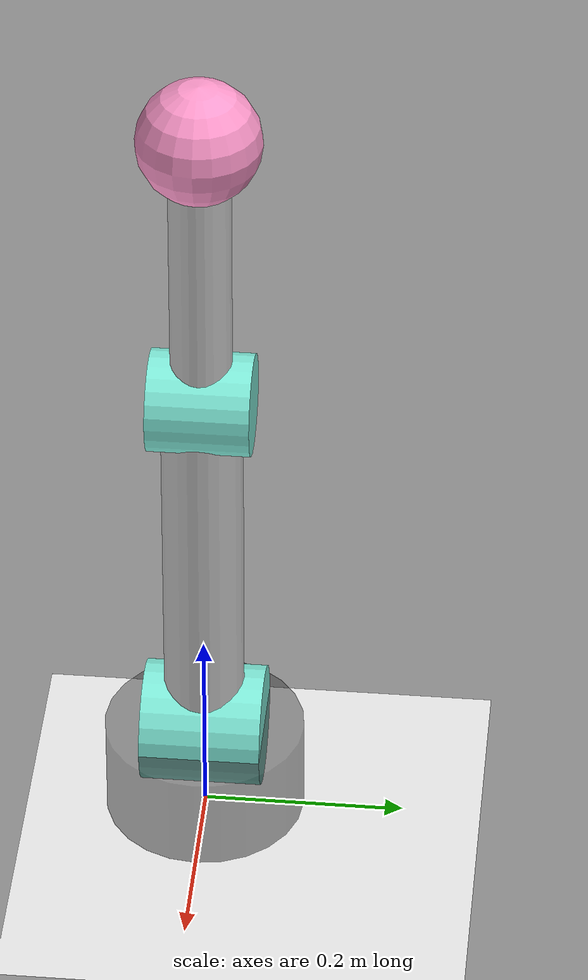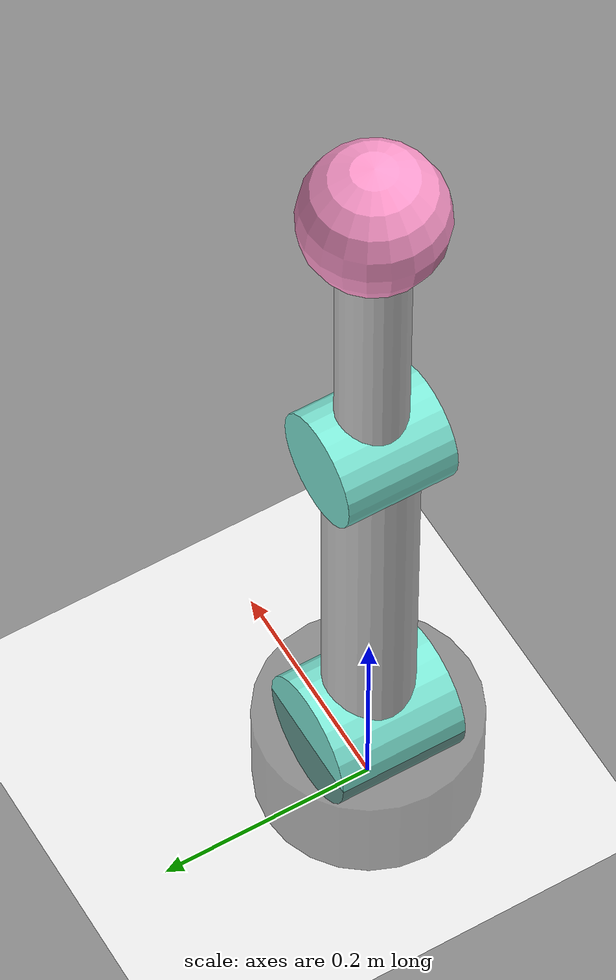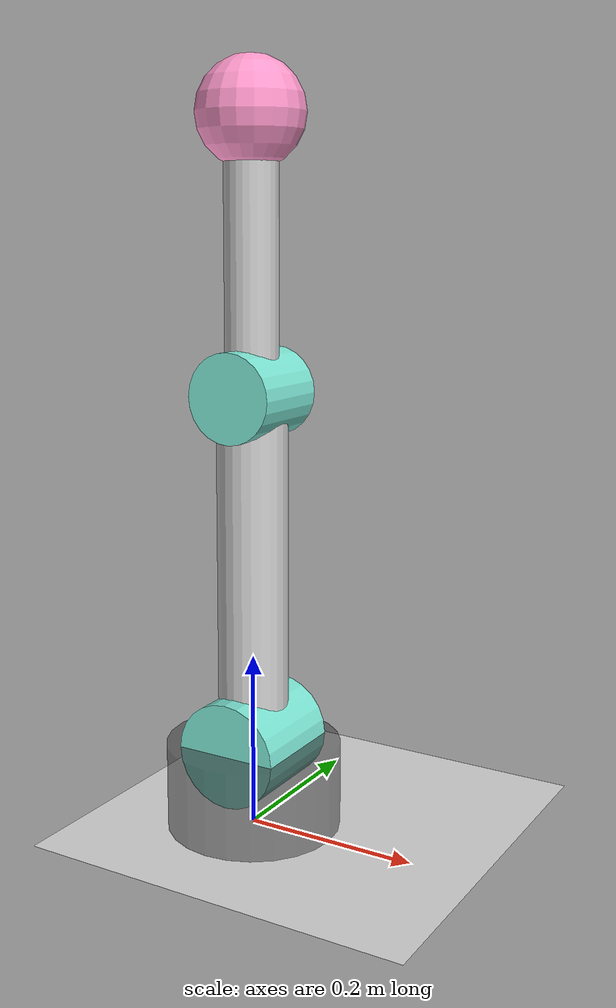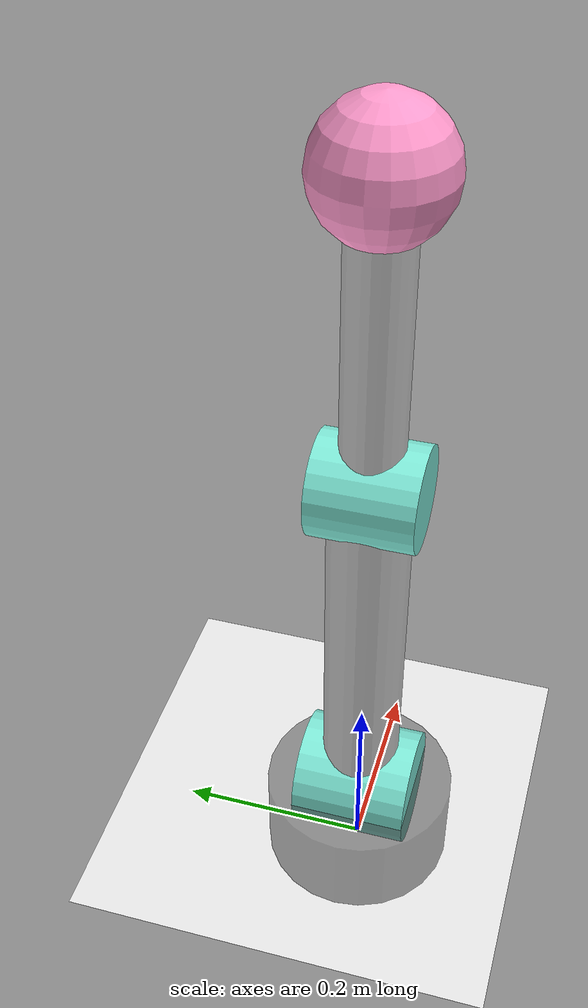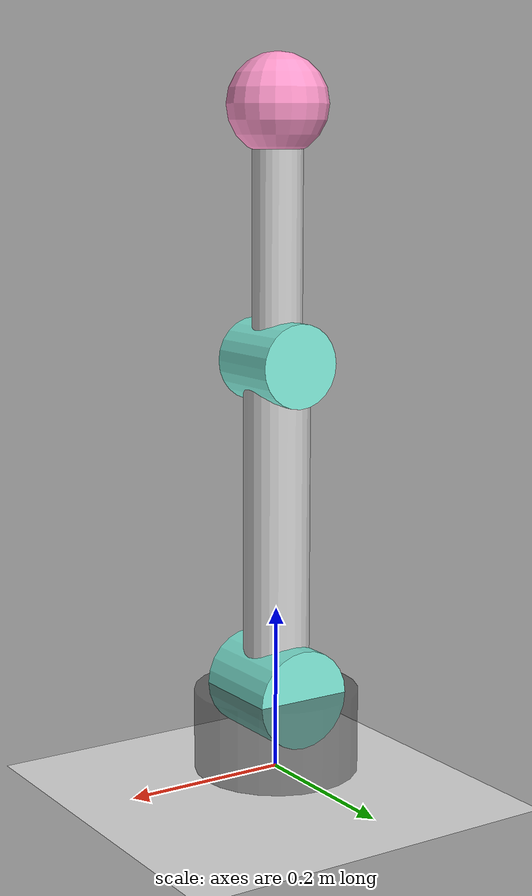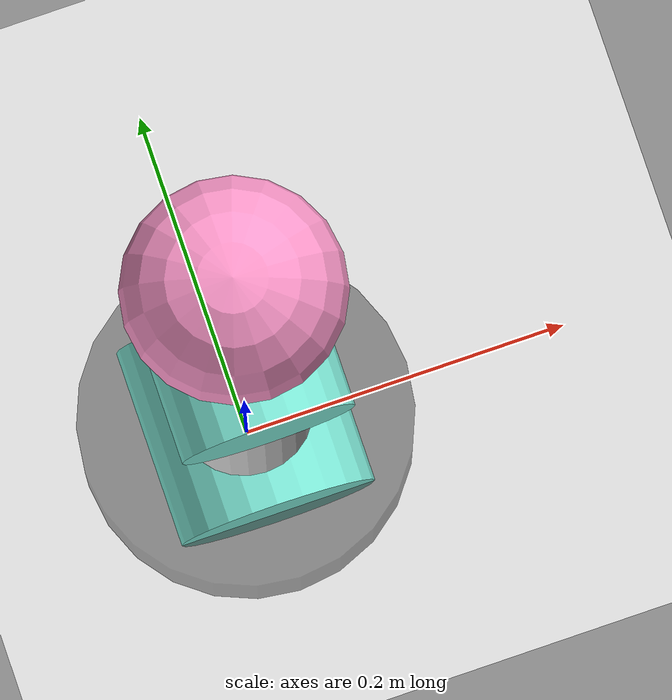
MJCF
<mujoco model="2dof_robot">
  <!-- 각도 단위를 degree로 사용하는 설정 -->
  <compiler angle="degree"/>
  <!-- 중력·시뮬레이션 시간 간격 설정 -->
  <option gravity="0 0 -9.81" timestep="0.005"/>

  <!-- 재질(material)·배경 정의 블록 -->
  <asset>
    <!-- 배경: light gray (skybox) -->
    <texture type="skybox" builtin="gradient"
             rgb1="0.75 0.75 0.75" rgb2="0.75 0.75 0.75"
             width="256" height="256"/>

    <material name="dark" rgba="0.2 0.2 0.2 0.5"/>
    <material name="gray" rgba="0.8 0.8 0.8 1"/>
    <material name="silver" rgba="0.9 0.9 0.9 1"/>
    <material name="mint" rgba="0.5 0.92 0.85 1"/>
    <material name="pink" rgba="1.0 0.6 0.8 1"/>
  </asset>

  <!-- 실제 월드에 배치되는 물체 정의 -->
  <worldbody>
    <light pos="0 0 2" dir="0 0 -1" directional="true"/>
    <geom type="plane" size="2 2 0.1" material="silver"/>

    <body name="base" pos="0 0 0.05">
      <geom type="cylinder" size="0.1 0.05" material="dark" contype="0" conaffinity="0"/>

      <body name="link1" pos="0 0 0.05">
        <joint name="joint1" type="hinge" axis="0 -1 0" range="-45 45" damping="10"/>
        <geom type="cylinder" size="0.06 0.06" euler="90 0 0" material="mint"/>
        <geom type="cylinder" size="0.04 0.2" pos="0 0 0.2" material="gray"/>

        <body name="link2" pos="0 0 0.4">
          <joint name="joint2" type="hinge" axis="0 -1 0" range="-45 45" damping="10"/>
          <geom type="cylinder" size="0.05 0.05" euler="90 0 0" material="mint"/>
          <geom type="cylinder" size="0.03 0.15" pos="0 0 0.15" material="gray"/>

          <body name="end_effector" pos="0 0 0.3">
            <geom type="sphere" size="0.06" material="pink"/>
          </body>
        </body>
      </body>
    </body>
  </worldbody>

  <!-- motor actuator: ctrl에 토크(Nm)를 직접 넣는 가장 기본적인 방식 -->
  <actuator>
    <motor name="motor_j1" joint="joint1"/>
    <motor name="motor_j2" joint="joint2"/>
  </actuator>

  <!-- 01의 최종 자세(ㄱ자, +45°/+45°)에서 시작 -->
  <keyframe>
    <key name="init" qpos="0.7864 0.7878" qvel="0 0"/>
  </keyframe>

</mujoco>
